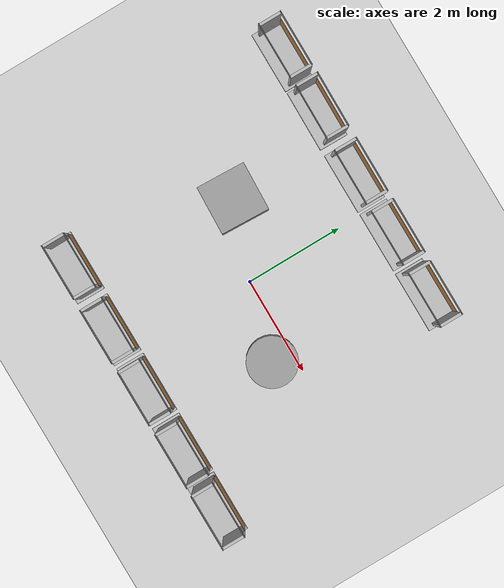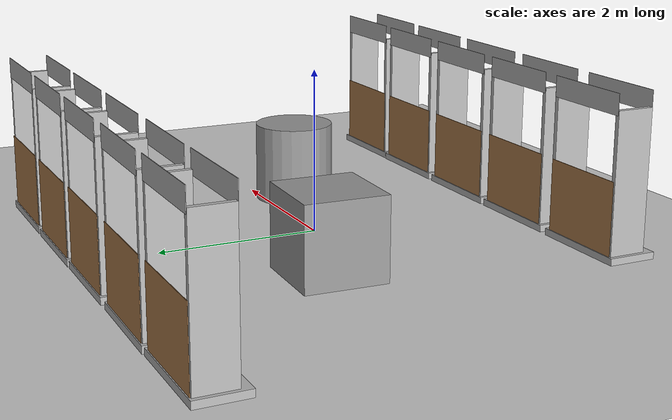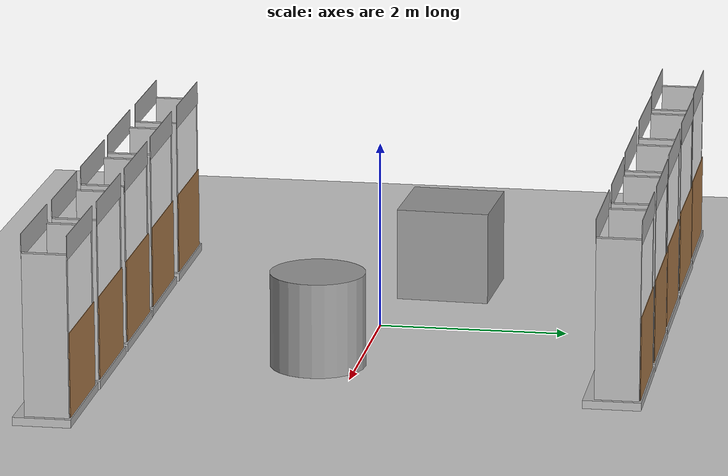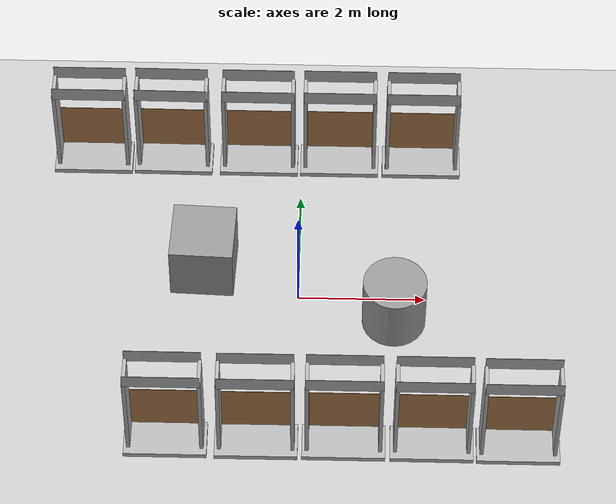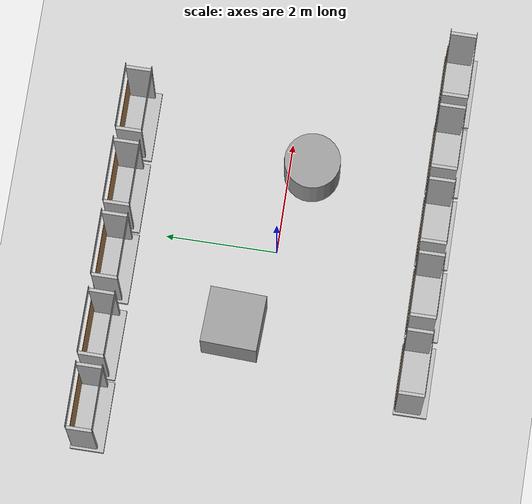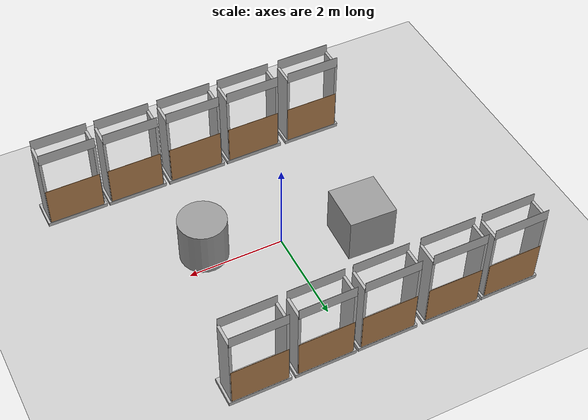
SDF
<sdf version="1.6">
 <world name="default">
  <light name="sun" type="directional">
   <pose>0 0 10 0 -0 0</pose>
   <diffuse>0.8 0.8 0.8 1</diffuse>
   <specular>0.1 0.1 0.1 1</specular>
   <attenuation>
    <range>1000</range>
    <constant>0.9</constant>
    <linear>0.01</linear>
    <quadratic>0.001</quadratic>
   </attenuation>
   <direction>-0.5 0.5 -1</direction>
  </light>
  <model name="ground_plane">
   <static>1</static>
   <link name="link">
    <collision name="collision">
     <geometry><plane><normal>0 0 1</normal><size>100 100</size></plane></geometry>
     <surface><friction><ode><mu>100</mu><mu2>50</mu2></ode></friction></surface>
    </collision>
    <visual name="visual">
     <cast_shadows>0</cast_shadows>
     <geometry><plane><normal>0 0 1</normal><size>100 100</size></plane></geometry>
     <material>
      <script><uri>file://media/materials/scripts/gazebo.material</uri><name>Gazebo/Grey</name></script>
     </material>
    </visual>
   </link>
  </model>
  <gravity>0 0 -9.8</gravity>
  <magnetic_field>6e-06 2.3e-05 -4.2e-05</magnetic_field>
  <atmosphere type="adiabatic"/>
  <physics name="default_physics" default="0" type="ode">
   <max_step_size>0.001</max_step_size>
   <real_time_factor>1</real_time_factor>
   <real_time_update_rate>1000</real_time_update_rate>
  </physics>
  <scene><ambient>0.4 0.4 0.4 1</ambient><background>0.7 0.7 0.7 1</background><shadows>1</shadows></scene>
  <spherical_coordinates>
   <surface_model>EARTH_WGS84</surface_model>
   <latitude_deg>0</latitude_deg>
   <longitude_deg>0</longitude_deg>
   <elevation>0</elevation>
   <heading_deg>0</heading_deg>
  </spherical_coordinates>
  <model name="unit_cylinder_0">
   <pose>1.51347 -0.411785 0.499991 0 0 -0.213293</pose>
   <link name="link">
    <inertial>
     <mass>1</mass>
     <inertia><ixx>0.145833</ixx><ixy>0</ixy><ixz>0</ixz><iyy>0.145833</iyy><iyz>0</iyz><izz>0.125</izz></inertia>
    </inertial>
    <collision name="collision">
     <geometry><cylinder><radius>0.5</radius><length>1</length></cylinder></geometry>
    </collision>
    <visual name="visual">
     <geometry><cylinder><radius>0.5</radius><length>1</length></cylinder></geometry>
     <material>
      <script><name>Gazebo/Grey</name><uri>file://media/materials/scripts/gazebo.material</uri></script>
     </material>
    </visual>
   </link>
  </model>
  <light name="user_spot_light_0" type="spot">
   <pose>-3.28458 5.52578 1 0 -0 0</pose>
   <diffuse>0.5 0.5 0.5 1</diffuse>
   <specular>0.1 0.1 0.1 1</specular>
   <direction>0 0 -1</direction>
   <attenuation>
    <range>20</range>
    <constant>0.5</constant>
    <linear>0.01</linear>
    <quadratic>0.001</quadratic>
   </attenuation>
   <cast_shadows>0</cast_shadows>
   <spot><inner_angle>0.6</inner_angle><outer_angle>1</outer_angle><falloff>1</falloff></spot>
  </light>
  <light name="user_spot_light_1" type="spot">
   <pose>1.94138 -4.66123 1 0 -0 0</pose>
   <diffuse>0.5 0.5 0.5 1</diffuse>
   <specular>0.1 0.1 0.1 1</specular>
   <direction>0 0 -1</direction>
   <attenuation>
    <range>20</range>
    <constant>0.5</constant>
    <linear>0.01</linear>
    <quadratic>0.001</quadratic>
   </attenuation>
   <cast_shadows>0</cast_shadows>
   <spot><inner_angle>0.6</inner_angle><outer_angle>1</outer_angle><falloff>1</falloff></spot>
  </light>
  <model name="unit_box_0_0">
   <pose>-1.51313 0.53504 0.499995 -1e-05 -0 -0.040696</pose>
   <link name="link">
    <inertial>
     <mass>1</mass>
     <inertia>
      <ixx>0.166667</ixx>
      <ixy>0</ixy>
      <ixz>0</ixz>
      <iyy>0.166667</iyy>
      <iyz>0</iyz>
      <izz>0.166667</izz>
     </inertia>
    </inertial>
    <collision name="collision"><geometry><box><size>1 1 1</size></box></geometry></collision>
    <visual name="visual">
     <geometry><box><size>1 1 1</size></box></geometry>
     <material>
      <script><name>Gazebo/Grey</name><uri>file://media/materials/scripts/gazebo.material</uri></script>
     </material>
    </visual>
   </link>
  </model>
  <model name="frc2016_drawbridge">
   <link name="base">
    <inertial>
     <mass>10</mass>
     <pose>0 0 1 0 -0 0</pose>
     <inertia><ixx>3.64907</ixx><ixy>0</ixy><ixz>0</ixz><iyy>4.67075</iyy><iyz>0</iyz><izz>1.66649</izz></inertia>
    </inertial>
    <visual name="platform">
     <pose>0 0 0.0425 0 -0 0</pose>
     <geometry><box><size>1.27 0.5969 0.085</size></box></geometry>
    </visual>
    <collision name="platform">
     <pose>0 0 0.0425 0 -0 0</pose>
     <geometry><box><size>1.27 0.5969 0.085</size></box></geometry>
    </collision>
    <visual name="right_wall">
     <pose>0.55879 0.04444 0.889 0 -0 0</pose>
     <geometry><box><size>0.05715 0.45698 1.77165</size></box></geometry>
    </visual>
    <collision name="right_wall">
     <pose>0.55879 0.04444 0.889 0 -0 0</pose>
     <geometry><box><size>0.05715 0.45698 1.77165</size></box></geometry>
    </collision>
    <visual name="left_wall">
     <pose>-0.55879 0.04444 0.889 0 -0 0</pose>
     <geometry><box><size>0.05715 0.45698 1.77165</size></box></geometry>
    </visual>
    <collision name="left_wall">
     <pose>-0.55879 0.04444 0.889 0 -0 0</pose>
     <geometry><box><size>0.05715 0.45698 1.77165</size></box></geometry>
    </collision>
    <visual name="front_upper_wall">
     <pose>0 0.27611 1.84286 0 -0 0</pose>
     <geometry><box><size>1.1557 0.006347 0.254</size></box></geometry>
    </visual>
    <collision name="front_upper_wall">
     <pose>0 0.27611 1.84286 0 -0 0</pose>
     <geometry><box><size>1.1557 0.006347 0.254</size></box></geometry>
    </collision>
    <visual name="back_upper_wall">
     <pose>0 -0.18722 1.84286 0 -0 0</pose>
     <geometry><box><size>1.1557 0.006347 0.254</size></box></geometry>
    </visual>
    <collision name="back_upper_wall">
     <pose>0 -0.18722 1.84286 0 -0 0</pose>
     <geometry><box><size>1.1557 0.006347 0.254</size></box></geometry>
    </collision>
   </link>
   <link name="bridge">
    <pose>0 0.28245 0.50577 0 -0 0</pose>
    <inertial>
     <mass>2</mass>
     <pose>0 -0.28245 -0.50577 0 -0 0</pose>
     <inertia>
      <ixx>0.139361</ixx>
      <ixy>0</ixy>
      <ixz>0</ixz>
      <iyy>0.357088</iyy>
      <iyz>0</iyz>
      <izz>0.217741</izz>
     </inertia>
    </inertial>
    <visual name="visual">
     <geometry><box><size>1.14298 0.006347 0.9144</size></box></geometry>
     <material><script><name>Gazebo/WoodFloor</name><uri>__default__</uri></script></material>
    </visual>
    <collision name="collision"><geometry><box><size>1.14298 0.006347 0.9144</size></box></geometry></collision>
   </link>
   <joint name="bridge_joint" type="revolute">
    <pose>0 0 -0.4172 0 -0 0</pose>
    <parent>base</parent>
    <child>bridge</child>
    <axis>
     <xyz>1 0 0</xyz>
     <limit><lower>-2</lower><upper>0</upper></limit>
     <use_parent_model_frame>0</use_parent_model_frame>
     <dynamics><spring_reference>0</spring_reference><spring_stiffness>0</spring_stiffness></dynamics>
    </axis>
   </joint>
   <pose>-1.9655 -2.75919 1e-06 -1e-06 -1e-06 7e-06</pose>
  </model>
  <model name="frc2016_drawbridge_clone">
   <link name="base">
    <inertial>
     <mass>10</mass>
     <pose>0 0 1 0 -0 0</pose>
     <inertia><ixx>3.64907</ixx><ixy>0</ixy><ixz>0</ixz><iyy>4.67075</iyy><iyz>0</iyz><izz>1.66649</izz></inertia>
    </inertial>
    <visual name="platform">
     <pose>0 0 0.0425 0 -0 0</pose>
     <geometry><box><size>1.27 0.5969 0.085</size></box></geometry>
    </visual>
    <collision name="platform">
     <pose>0 0 0.0425 0 -0 0</pose>
     <geometry><box><size>1.27 0.5969 0.085</size></box></geometry>
    </collision>
    <visual name="right_wall">
     <pose>0.55879 0.04444 0.889 0 -0 0</pose>
     <geometry><box><size>0.05715 0.45698 1.77165</size></box></geometry>
    </visual>
    <collision name="right_wall">
     <pose>0.55879 0.04444 0.889 0 -0 0</pose>
     <geometry><box><size>0.05715 0.45698 1.77165</size></box></geometry>
    </collision>
    <visual name="left_wall">
     <pose>-0.55879 0.04444 0.889 0 -0 0</pose>
     <geometry><box><size>0.05715 0.45698 1.77165</size></box></geometry>
    </visual>
    <collision name="left_wall">
     <pose>-0.55879 0.04444 0.889 0 -0 0</pose>
     <geometry><box><size>0.05715 0.45698 1.77165</size></box></geometry>
    </collision>
    <visual name="front_upper_wall">
     <pose>0 0.27611 1.84286 0 -0 0</pose>
     <geometry><box><size>1.1557 0.006347 0.254</size></box></geometry>
    </visual>
    <collision name="front_upper_wall">
     <pose>0 0.27611 1.84286 0 -0 0</pose>
     <geometry><box><size>1.1557 0.006347 0.254</size></box></geometry>
    </collision>
    <visual name="back_upper_wall">
     <pose>0 -0.18722 1.84286 0 -0 0</pose>
     <geometry><box><size>1.1557 0.006347 0.254</size></box></geometry>
    </visual>
    <collision name="back_upper_wall">
     <pose>0 -0.18722 1.84286 0 -0 0</pose>
     <geometry><box><size>1.1557 0.006347 0.254</size></box></geometry>
    </collision>
   </link>
   <link name="bridge">
    <pose>0 0.28245 0.50577 0 -0 0</pose>
    <inertial>
     <mass>2</mass>
     <pose>0 -0.28245 -0.50577 0 -0 0</pose>
     <inertia>
      <ixx>0.139361</ixx>
      <ixy>0</ixy>
      <ixz>0</ixz>
      <iyy>0.357088</iyy>
      <iyz>0</iyz>
      <izz>0.217741</izz>
     </inertia>
    </inertial>
    <visual name="visual">
     <geometry><box><size>1.14298 0.006347 0.9144</size></box></geometry>
     <material><script><name>Gazebo/WoodFloor</name><uri>__default__</uri></script></material>
    </visual>
    <collision name="collision"><geometry><box><size>1.14298 0.006347 0.9144</size></box></geometry></collision>
   </link>
   <joint name="bridge_joint" type="revolute">
    <pose>0 0 -0.4172 0 -0 0</pose>
    <parent>base</parent>
    <child>bridge</child>
    <axis>
     <xyz>1 0 0</xyz>
     <limit><lower>-2</lower><upper>0</upper></limit>
     <use_parent_model_frame>0</use_parent_model_frame>
     <dynamics><spring_reference>0</spring_reference><spring_stiffness>0</spring_stiffness></dynamics>
    </axis>
   </joint>
   <pose>1.94894 2.77643 1e-06 1e-06 -1e-06 5e-06</pose>
  </model>
  <model name="frc2016_drawbridge_clone_0">
   <link name="base">
    <inertial>
     <mass>10</mass>
     <pose>0 0 1 0 -0 0</pose>
     <inertia><ixx>3.64907</ixx><ixy>0</ixy><ixz>0</ixz><iyy>4.67075</iyy><iyz>0</iyz><izz>1.66649</izz></inertia>
    </inertial>
    <visual name="platform">
     <pose>0 0 0.0425 0 -0 0</pose>
     <geometry><box><size>1.27 0.5969 0.085</size></box></geometry>
    </visual>
    <collision name="platform">
     <pose>0 0 0.0425 0 -0 0</pose>
     <geometry><box><size>1.27 0.5969 0.085</size></box></geometry>
    </collision>
    <visual name="right_wall">
     <pose>0.55879 0.04444 0.889 0 -0 0</pose>
     <geometry><box><size>0.05715 0.45698 1.77165</size></box></geometry>
    </visual>
    <collision name="right_wall">
     <pose>0.55879 0.04444 0.889 0 -0 0</pose>
     <geometry><box><size>0.05715 0.45698 1.77165</size></box></geometry>
    </collision>
    <visual name="left_wall">
     <pose>-0.55879 0.04444 0.889 0 -0 0</pose>
     <geometry><box><size>0.05715 0.45698 1.77165</size></box></geometry>
    </visual>
    <collision name="left_wall">
     <pose>-0.55879 0.04444 0.889 0 -0 0</pose>
     <geometry><box><size>0.05715 0.45698 1.77165</size></box></geometry>
    </collision>
    <visual name="front_upper_wall">
     <pose>0 0.27611 1.84286 0 -0 0</pose>
     <geometry><box><size>1.1557 0.006347 0.254</size></box></geometry>
    </visual>
    <collision name="front_upper_wall">
     <pose>0 0.27611 1.84286 0 -0 0</pose>
     <geometry><box><size>1.1557 0.006347 0.254</size></box></geometry>
    </collision>
    <visual name="back_upper_wall">
     <pose>0 -0.18722 1.84286 0 -0 0</pose>
     <geometry><box><size>1.1557 0.006347 0.254</size></box></geometry>
    </visual>
    <collision name="back_upper_wall">
     <pose>0 -0.18722 1.84286 0 -0 0</pose>
     <geometry><box><size>1.1557 0.006347 0.254</size></box></geometry>
    </collision>
   </link>
   <link name="bridge">
    <pose>0 0.28245 0.50577 0 -0 0</pose>
    <inertial>
     <mass>2</mass>
     <pose>0 -0.28245 -0.50577 0 -0 0</pose>
     <inertia>
      <ixx>0.139361</ixx>
      <ixy>0</ixy>
      <ixz>0</ixz>
      <iyy>0.357088</iyy>
      <iyz>0</iyz>
      <izz>0.217741</izz>
     </inertia>
    </inertial>
    <visual name="visual">
     <geometry><box><size>1.14298 0.006347 0.9144</size></box></geometry>
     <material><script><name>Gazebo/WoodFloor</name><uri>__default__</uri></script></material>
    </visual>
    <collision name="collision"><geometry><box><size>1.14298 0.006347 0.9144</size></box></geometry></collision>
   </link>
   <joint name="bridge_joint" type="revolute">
    <pose>0 0 -0.4172 0 -0 0</pose>
    <parent>base</parent>
    <child>bridge</child>
    <axis>
     <xyz>1 0 0</xyz>
     <limit><lower>-2</lower><upper>0</upper></limit>
     <use_parent_model_frame>0</use_parent_model_frame>
     <dynamics><spring_reference>0</spring_reference><spring_stiffness>0</spring_stiffness></dynamics>
    </axis>
   </joint>
   <pose>-0.581487 -2.76526 0 0 1e-06 0.002481</pose>
  </model>
  <model name="frc2016_drawbridge_clone_1">
   <link name="base">
    <inertial>
     <mass>10</mass>
     <pose>0 0 1 0 -0 0</pose>
     <inertia><ixx>3.64907</ixx><ixy>0</ixy><ixz>0</ixz><iyy>4.67075</iyy><iyz>0</iyz><izz>1.66649</izz></inertia>
    </inertial>
    <visual name="platform">
     <pose>0 0 0.0425 0 -0 0</pose>
     <geometry><box><size>1.27 0.5969 0.085</size></box></geometry>
    </visual>
    <collision name="platform">
     <pose>0 0 0.0425 0 -0 0</pose>
     <geometry><box><size>1.27 0.5969 0.085</size></box></geometry>
    </collision>
    <visual name="right_wall">
     <pose>0.55879 0.04444 0.889 0 -0 0</pose>
     <geometry><box><size>0.05715 0.45698 1.77165</size></box></geometry>
    </visual>
    <collision name="right_wall">
     <pose>0.55879 0.04444 0.889 0 -0 0</pose>
     <geometry><box><size>0.05715 0.45698 1.77165</size></box></geometry>
    </collision>
    <visual name="left_wall">
     <pose>-0.55879 0.04444 0.889 0 -0 0</pose>
     <geometry><box><size>0.05715 0.45698 1.77165</size></box></geometry>
    </visual>
    <collision name="left_wall">
     <pose>-0.55879 0.04444 0.889 0 -0 0</pose>
     <geometry><box><size>0.05715 0.45698 1.77165</size></box></geometry>
    </collision>
    <visual name="front_upper_wall">
     <pose>0 0.27611 1.84286 0 -0 0</pose>
     <geometry><box><size>1.1557 0.006347 0.254</size></box></geometry>
    </visual>
    <collision name="front_upper_wall">
     <pose>0 0.27611 1.84286 0 -0 0</pose>
     <geometry><box><size>1.1557 0.006347 0.254</size></box></geometry>
    </collision>
    <visual name="back_upper_wall">
     <pose>0 -0.18722 1.84286 0 -0 0</pose>
     <geometry><box><size>1.1557 0.006347 0.254</size></box></geometry>
    </visual>
    <collision name="back_upper_wall">
     <pose>0 -0.18722 1.84286 0 -0 0</pose>
     <geometry><box><size>1.1557 0.006347 0.254</size></box></geometry>
    </collision>
   </link>
   <link name="bridge">
    <pose>0 0.28245 0.50577 0 -0 0</pose>
    <inertial>
     <mass>2</mass>
     <pose>0 -0.28245 -0.50577 0 -0 0</pose>
     <inertia>
      <ixx>0.139361</ixx>
      <ixy>0</ixy>
      <ixz>0</ixz>
      <iyy>0.357088</iyy>
      <iyz>0</iyz>
      <izz>0.217741</izz>
     </inertia>
    </inertial>
    <visual name="visual">
     <geometry><box><size>1.14298 0.006347 0.9144</size></box></geometry>
     <material><script><name>Gazebo/WoodFloor</name><uri>__default__</uri></script></material>
    </visual>
    <collision name="collision"><geometry><box><size>1.14298 0.006347 0.9144</size></box></geometry></collision>
   </link>
   <joint name="bridge_joint" type="revolute">
    <pose>0 0 -0.4172 0 -0 0</pose>
    <parent>base</parent>
    <child>bridge</child>
    <axis>
     <xyz>1 0 0</xyz>
     <limit><lower>-2</lower><upper>0</upper></limit>
     <use_parent_model_frame>0</use_parent_model_frame>
     <dynamics><spring_reference>0</spring_reference><spring_stiffness>0</spring_stiffness></dynamics>
    </axis>
   </joint>
   <pose>0.752193 -2.75919 -1e-06 -4e-06 -0 1.2e-05</pose>
  </model>
  <model name="frc2016_drawbridge_clone_2">
   <link name="base">
    <inertial>
     <mass>10</mass>
     <pose>0 0 1 0 -0 0</pose>
     <inertia><ixx>3.64907</ixx><ixy>0</ixy><ixz>0</ixz><iyy>4.67075</iyy><iyz>0</iyz><izz>1.66649</izz></inertia>
    </inertial>
    <visual name="platform">
     <pose>0 0 0.0425 0 -0 0</pose>
     <geometry><box><size>1.27 0.5969 0.085</size></box></geometry>
    </visual>
    <collision name="platform">
     <pose>0 0 0.0425 0 -0 0</pose>
     <geometry><box><size>1.27 0.5969 0.085</size></box></geometry>
    </collision>
    <visual name="right_wall">
     <pose>0.55879 0.04444 0.889 0 -0 0</pose>
     <geometry><box><size>0.05715 0.45698 1.77165</size></box></geometry>
    </visual>
    <collision name="right_wall">
     <pose>0.55879 0.04444 0.889 0 -0 0</pose>
     <geometry><box><size>0.05715 0.45698 1.77165</size></box></geometry>
    </collision>
    <visual name="left_wall">
     <pose>-0.55879 0.04444 0.889 0 -0 0</pose>
     <geometry><box><size>0.05715 0.45698 1.77165</size></box></geometry>
    </visual>
    <collision name="left_wall">
     <pose>-0.55879 0.04444 0.889 0 -0 0</pose>
     <geometry><box><size>0.05715 0.45698 1.77165</size></box></geometry>
    </collision>
    <visual name="front_upper_wall">
     <pose>0 0.27611 1.84286 0 -0 0</pose>
     <geometry><box><size>1.1557 0.006347 0.254</size></box></geometry>
    </visual>
    <collision name="front_upper_wall">
     <pose>0 0.27611 1.84286 0 -0 0</pose>
     <geometry><box><size>1.1557 0.006347 0.254</size></box></geometry>
    </collision>
    <visual name="back_upper_wall">
     <pose>0 -0.18722 1.84286 0 -0 0</pose>
     <geometry><box><size>1.1557 0.006347 0.254</size></box></geometry>
    </visual>
    <collision name="back_upper_wall">
     <pose>0 -0.18722 1.84286 0 -0 0</pose>
     <geometry><box><size>1.1557 0.006347 0.254</size></box></geometry>
    </collision>
   </link>
   <link name="bridge">
    <pose>0 0.28245 0.50577 0 -0 0</pose>
    <inertial>
     <mass>2</mass>
     <pose>0 -0.28245 -0.50577 0 -0 0</pose>
     <inertia>
      <ixx>0.139361</ixx>
      <ixy>0</ixy>
      <ixz>0</ixz>
      <iyy>0.357088</iyy>
      <iyz>0</iyz>
      <izz>0.217741</izz>
     </inertia>
    </inertial>
    <visual name="visual">
     <geometry><box><size>1.14298 0.006347 0.9144</size></box></geometry>
     <material><script><name>Gazebo/WoodFloor</name><uri>__default__</uri></script></material>
    </visual>
    <collision name="collision"><geometry><box><size>1.14298 0.006347 0.9144</size></box></geometry></collision>
   </link>
   <joint name="bridge_joint" type="revolute">
    <pose>0 0 -0.4172 0 -0 0</pose>
    <parent>base</parent>
    <child>bridge</child>
    <axis>
     <xyz>1 0 0</xyz>
     <limit><lower>-2</lower><upper>0</upper></limit>
     <use_parent_model_frame>0</use_parent_model_frame>
     <dynamics><spring_reference>0</spring_reference><spring_stiffness>0</spring_stiffness></dynamics>
    </axis>
   </joint>
   <pose>2.09597 -2.75918 0 3e-06 -1e-06 1.2e-05</pose>
  </model>
  <model name="frc2016_drawbridge_clone_3">
   <link name="base">
    <inertial>
     <mass>10</mass>
     <pose>0 0 1 0 -0 0</pose>
     <inertia><ixx>3.64907</ixx><ixy>0</ixy><ixz>0</ixz><iyy>4.67075</iyy><iyz>0</iyz><izz>1.66649</izz></inertia>
    </inertial>
    <visual name="platform">
     <pose>0 0 0.0425 0 -0 0</pose>
     <geometry><box><size>1.27 0.5969 0.085</size></box></geometry>
    </visual>
    <collision name="platform">
     <pose>0 0 0.0425 0 -0 0</pose>
     <geometry><box><size>1.27 0.5969 0.085</size></box></geometry>
    </collision>
    <visual name="right_wall">
     <pose>0.55879 0.04444 0.889 0 -0 0</pose>
     <geometry><box><size>0.05715 0.45698 1.77165</size></box></geometry>
    </visual>
    <collision name="right_wall">
     <pose>0.55879 0.04444 0.889 0 -0 0</pose>
     <geometry><box><size>0.05715 0.45698 1.77165</size></box></geometry>
    </collision>
    <visual name="left_wall">
     <pose>-0.55879 0.04444 0.889 0 -0 0</pose>
     <geometry><box><size>0.05715 0.45698 1.77165</size></box></geometry>
    </visual>
    <collision name="left_wall">
     <pose>-0.55879 0.04444 0.889 0 -0 0</pose>
     <geometry><box><size>0.05715 0.45698 1.77165</size></box></geometry>
    </collision>
    <visual name="front_upper_wall">
     <pose>0 0.27611 1.84286 0 -0 0</pose>
     <geometry><box><size>1.1557 0.006347 0.254</size></box></geometry>
    </visual>
    <collision name="front_upper_wall">
     <pose>0 0.27611 1.84286 0 -0 0</pose>
     <geometry><box><size>1.1557 0.006347 0.254</size></box></geometry>
    </collision>
    <visual name="back_upper_wall">
     <pose>0 -0.18722 1.84286 0 -0 0</pose>
     <geometry><box><size>1.1557 0.006347 0.254</size></box></geometry>
    </visual>
    <collision name="back_upper_wall">
     <pose>0 -0.18722 1.84286 0 -0 0</pose>
     <geometry><box><size>1.1557 0.006347 0.254</size></box></geometry>
    </collision>
   </link>
   <link name="bridge">
    <pose>0 0.28245 0.50577 0 -0 0</pose>
    <inertial>
     <mass>2</mass>
     <pose>0 -0.28245 -0.50577 0 -0 0</pose>
     <inertia>
      <ixx>0.139361</ixx>
      <ixy>0</ixy>
      <ixz>0</ixz>
      <iyy>0.357088</iyy>
      <iyz>0</iyz>
      <izz>0.217741</izz>
     </inertia>
    </inertial>
    <visual name="visual">
     <geometry><box><size>1.14298 0.006347 0.9144</size></box></geometry>
     <material><script><name>Gazebo/WoodFloor</name><uri>__default__</uri></script></material>
    </visual>
    <collision name="collision"><geometry><box><size>1.14298 0.006347 0.9144</size></box></geometry></collision>
   </link>
   <joint name="bridge_joint" type="revolute">
    <pose>0 0 -0.4172 0 -0 0</pose>
    <parent>base</parent>
    <child>bridge</child>
    <axis>
     <xyz>1 0 0</xyz>
     <limit><lower>-2</lower><upper>0</upper></limit>
     <use_parent_model_frame>0</use_parent_model_frame>
     <dynamics><spring_reference>0</spring_reference><spring_stiffness>0</spring_stiffness></dynamics>
    </axis>
   </joint>
   <pose>3.41179 -2.77011 0 1e-06 -0 -0.000339</pose>
  </model>
  <model name="frc2016_drawbridge_clone_4">
   <link name="base">
    <inertial>
     <mass>10</mass>
     <pose>0 0 1 0 -0 0</pose>
     <inertia><ixx>3.64907</ixx><ixy>0</ixy><ixz>0</ixz><iyy>4.67075</iyy><iyz>0</iyz><izz>1.66649</izz></inertia>
    </inertial>
    <visual name="platform">
     <pose>0 0 0.0425 0 -0 0</pose>
     <geometry><box><size>1.27 0.5969 0.085</size></box></geometry>
    </visual>
    <collision name="platform">
     <pose>0 0 0.0425 0 -0 0</pose>
     <geometry><box><size>1.27 0.5969 0.085</size></box></geometry>
    </collision>
    <visual name="right_wall">
     <pose>0.55879 0.04444 0.889 0 -0 0</pose>
     <geometry><box><size>0.05715 0.45698 1.77165</size></box></geometry>
    </visual>
    <collision name="right_wall">
     <pose>0.55879 0.04444 0.889 0 -0 0</pose>
     <geometry><box><size>0.05715 0.45698 1.77165</size></box></geometry>
    </collision>
    <visual name="left_wall">
     <pose>-0.55879 0.04444 0.889 0 -0 0</pose>
     <geometry><box><size>0.05715 0.45698 1.77165</size></box></geometry>
    </visual>
    <collision name="left_wall">
     <pose>-0.55879 0.04444 0.889 0 -0 0</pose>
     <geometry><box><size>0.05715 0.45698 1.77165</size></box></geometry>
    </collision>
    <visual name="front_upper_wall">
     <pose>0 0.27611 1.84286 0 -0 0</pose>
     <geometry><box><size>1.1557 0.006347 0.254</size></box></geometry>
    </visual>
    <collision name="front_upper_wall">
     <pose>0 0.27611 1.84286 0 -0 0</pose>
     <geometry><box><size>1.1557 0.006347 0.254</size></box></geometry>
    </collision>
    <visual name="back_upper_wall">
     <pose>0 -0.18722 1.84286 0 -0 0</pose>
     <geometry><box><size>1.1557 0.006347 0.254</size></box></geometry>
    </visual>
    <collision name="back_upper_wall">
     <pose>0 -0.18722 1.84286 0 -0 0</pose>
     <geometry><box><size>1.1557 0.006347 0.254</size></box></geometry>
    </collision>
   </link>
   <link name="bridge">
    <pose>0 0.28245 0.50577 0 -0 0</pose>
    <inertial>
     <mass>2</mass>
     <pose>0 -0.28245 -0.50577 0 -0 0</pose>
     <inertia>
      <ixx>0.139361</ixx>
      <ixy>0</ixy>
      <ixz>0</ixz>
      <iyy>0.357088</iyy>
      <iyz>0</iyz>
      <izz>0.217741</izz>
     </inertia>
    </inertial>
    <visual name="visual">
     <geometry><box><size>1.14298 0.006347 0.9144</size></box></geometry>
     <material><script><name>Gazebo/WoodFloor</name><uri>__default__</uri></script></material>
    </visual>
    <collision name="collision"><geometry><box><size>1.14298 0.006347 0.9144</size></box></geometry></collision>
   </link>
   <joint name="bridge_joint" type="revolute">
    <pose>0 0 -0.4172 0 -0 0</pose>
    <parent>base</parent>
    <child>bridge</child>
    <axis>
     <xyz>1 0 0</xyz>
     <limit><lower>-2</lower><upper>0</upper></limit>
     <use_parent_model_frame>0</use_parent_model_frame>
     <dynamics><spring_reference>0</spring_reference><spring_stiffness>0</spring_stiffness></dynamics>
    </axis>
   </joint>
   <pose>0.611826 2.77643 -1e-06 0 2e-06 7e-06</pose>
  </model>
  <model name="frc2016_drawbridge_clone_5">
   <link name="base">
    <inertial>
     <mass>10</mass>
     <pose>0 0 1 0 -0 0</pose>
     <inertia><ixx>3.64907</ixx><ixy>0</ixy><ixz>0</ixz><iyy>4.67075</iyy><iyz>0</iyz><izz>1.66649</izz></inertia>
    </inertial>
    <visual name="platform">
     <pose>0 0 0.0425 0 -0 0</pose>
     <geometry><box><size>1.27 0.5969 0.085</size></box></geometry>
    </visual>
    <collision name="platform">
     <pose>0 0 0.0425 0 -0 0</pose>
     <geometry><box><size>1.27 0.5969 0.085</size></box></geometry>
    </collision>
    <visual name="right_wall">
     <pose>0.55879 0.04444 0.889 0 -0 0</pose>
     <geometry><box><size>0.05715 0.45698 1.77165</size></box></geometry>
    </visual>
    <collision name="right_wall">
     <pose>0.55879 0.04444 0.889 0 -0 0</pose>
     <geometry><box><size>0.05715 0.45698 1.77165</size></box></geometry>
    </collision>
    <visual name="left_wall">
     <pose>-0.55879 0.04444 0.889 0 -0 0</pose>
     <geometry><box><size>0.05715 0.45698 1.77165</size></box></geometry>
    </visual>
    <collision name="left_wall">
     <pose>-0.55879 0.04444 0.889 0 -0 0</pose>
     <geometry><box><size>0.05715 0.45698 1.77165</size></box></geometry>
    </collision>
    <visual name="front_upper_wall">
     <pose>0 0.27611 1.84286 0 -0 0</pose>
     <geometry><box><size>1.1557 0.006347 0.254</size></box></geometry>
    </visual>
    <collision name="front_upper_wall">
     <pose>0 0.27611 1.84286 0 -0 0</pose>
     <geometry><box><size>1.1557 0.006347 0.254</size></box></geometry>
    </collision>
    <visual name="back_upper_wall">
     <pose>0 -0.18722 1.84286 0 -0 0</pose>
     <geometry><box><size>1.1557 0.006347 0.254</size></box></geometry>
    </visual>
    <collision name="back_upper_wall">
     <pose>0 -0.18722 1.84286 0 -0 0</pose>
     <geometry><box><size>1.1557 0.006347 0.254</size></box></geometry>
    </collision>
   </link>
   <link name="bridge">
    <pose>0 0.28245 0.50577 0 -0 0</pose>
    <inertial>
     <mass>2</mass>
     <pose>0 -0.28245 -0.50577 0 -0 0</pose>
     <inertia>
      <ixx>0.139361</ixx>
      <ixy>0</ixy>
      <ixz>0</ixz>
      <iyy>0.357088</iyy>
      <iyz>0</iyz>
      <izz>0.217741</izz>
     </inertia>
    </inertial>
    <visual name="visual">
     <geometry><box><size>1.14298 0.006347 0.9144</size></box></geometry>
     <material><script><name>Gazebo/WoodFloor</name><uri>__default__</uri></script></material>
    </visual>
    <collision name="collision"><geometry><box><size>1.14298 0.006347 0.9144</size></box></geometry></collision>
   </link>
   <joint name="bridge_joint" type="revolute">
    <pose>0 0 -0.4172 0 -0 0</pose>
    <parent>base</parent>
    <child>bridge</child>
    <axis>
     <xyz>1 0 0</xyz>
     <limit><lower>-2</lower><upper>0</upper></limit>
     <use_parent_model_frame>0</use_parent_model_frame>
     <dynamics><spring_reference>0</spring_reference><spring_stiffness>0</spring_stiffness></dynamics>
    </axis>
   </joint>
   <pose>-0.703761 2.7702 1e-06 0 -1e-06 -0.002696</pose>
  </model>
  <model name="frc2016_drawbridge_clone_5_clone">
   <link name="base">
    <inertial>
     <mass>10</mass>
     <pose>0 0 1 0 -0 0</pose>
     <inertia><ixx>3.64907</ixx><ixy>0</ixy><ixz>0</ixz><iyy>4.67075</iyy><iyz>0</iyz><izz>1.66649</izz></inertia>
    </inertial>
    <visual name="platform">
     <pose>0 0 0.0425 0 -0 0</pose>
     <geometry><box><size>1.27 0.5969 0.085</size></box></geometry>
    </visual>
    <collision name="platform">
     <pose>0 0 0.0425 0 -0 0</pose>
     <geometry><box><size>1.27 0.5969 0.085</size></box></geometry>
    </collision>
    <visual name="right_wall">
     <pose>0.55879 0.04444 0.889 0 -0 0</pose>
     <geometry><box><size>0.05715 0.45698 1.77165</size></box></geometry>
    </visual>
    <collision name="right_wall">
     <pose>0.55879 0.04444 0.889 0 -0 0</pose>
     <geometry><box><size>0.05715 0.45698 1.77165</size></box></geometry>
    </collision>
    <visual name="left_wall">
     <pose>-0.55879 0.04444 0.889 0 -0 0</pose>
     <geometry><box><size>0.05715 0.45698 1.77165</size></box></geometry>
    </visual>
    <collision name="left_wall">
     <pose>-0.55879 0.04444 0.889 0 -0 0</pose>
     <geometry><box><size>0.05715 0.45698 1.77165</size></box></geometry>
    </collision>
    <visual name="front_upper_wall">
     <pose>0 0.27611 1.84286 0 -0 0</pose>
     <geometry><box><size>1.1557 0.006347 0.254</size></box></geometry>
    </visual>
    <collision name="front_upper_wall">
     <pose>0 0.27611 1.84286 0 -0 0</pose>
     <geometry><box><size>1.1557 0.006347 0.254</size></box></geometry>
    </collision>
    <visual name="back_upper_wall">
     <pose>0 -0.18722 1.84286 0 -0 0</pose>
     <geometry><box><size>1.1557 0.006347 0.254</size></box></geometry>
    </visual>
    <collision name="back_upper_wall">
     <pose>0 -0.18722 1.84286 0 -0 0</pose>
     <geometry><box><size>1.1557 0.006347 0.254</size></box></geometry>
    </collision>
   </link>
   <link name="bridge">
    <pose>0 0.28245 0.50577 0 -0 0</pose>
    <inertial>
     <mass>2</mass>
     <pose>0 -0.28245 -0.50577 0 -0 0</pose>
     <inertia>
      <ixx>0.139361</ixx>
      <ixy>0</ixy>
      <ixz>0</ixz>
      <iyy>0.357088</iyy>
      <iyz>0</iyz>
      <izz>0.217741</izz>
     </inertia>
    </inertial>
    <visual name="visual">
     <geometry><box><size>1.14298 0.006347 0.9144</size></box></geometry>
     <material><script><name>Gazebo/WoodFloor</name><uri>__default__</uri></script></material>
    </visual>
    <collision name="collision"><geometry><box><size>1.14298 0.006347 0.9144</size></box></geometry></collision>
   </link>
   <joint name="bridge_joint" type="revolute">
    <pose>0 0 -0.4172 0 -0 0</pose>
    <parent>base</parent>
    <child>bridge</child>
    <axis>
     <xyz>1 0 0</xyz>
     <limit><lower>-2</lower><upper>0</upper></limit>
     <use_parent_model_frame>0</use_parent_model_frame>
     <dynamics><spring_reference>0</spring_reference><spring_stiffness>0</spring_stiffness></dynamics>
    </axis>
   </joint>
   <pose>-2.10192 2.77052 2e-06 -3e-06 -0 -0.009335</pose>
  </model>
  <model name="frc2016_drawbridge_clone_5_clone_clone">
   <link name="base">
    <inertial>
     <mass>10</mass>
     <pose>0 0 1 0 -0 0</pose>
     <inertia><ixx>3.64907</ixx><ixy>0</ixy><ixz>0</ixz><iyy>4.67075</iyy><iyz>0</iyz><izz>1.66649</izz></inertia>
    </inertial>
    <visual name="platform">
     <pose>0 0 0.0425 0 -0 0</pose>
     <geometry><box><size>1.27 0.5969 0.085</size></box></geometry>
    </visual>
    <collision name="platform">
     <pose>0 0 0.0425 0 -0 0</pose>
     <geometry><box><size>1.27 0.5969 0.085</size></box></geometry>
    </collision>
    <visual name="right_wall">
     <pose>0.55879 0.04444 0.889 0 -0 0</pose>
     <geometry><box><size>0.05715 0.45698 1.77165</size></box></geometry>
    </visual>
    <collision name="right_wall">
     <pose>0.55879 0.04444 0.889 0 -0 0</pose>
     <geometry><box><size>0.05715 0.45698 1.77165</size></box></geometry>
    </collision>
    <visual name="left_wall">
     <pose>-0.55879 0.04444 0.889 0 -0 0</pose>
     <geometry><box><size>0.05715 0.45698 1.77165</size></box></geometry>
    </visual>
    <collision name="left_wall">
     <pose>-0.55879 0.04444 0.889 0 -0 0</pose>
     <geometry><box><size>0.05715 0.45698 1.77165</size></box></geometry>
    </collision>
    <visual name="front_upper_wall">
     <pose>0 0.27611 1.84286 0 -0 0</pose>
     <geometry><box><size>1.1557 0.006347 0.254</size></box></geometry>
    </visual>
    <collision name="front_upper_wall">
     <pose>0 0.27611 1.84286 0 -0 0</pose>
     <geometry><box><size>1.1557 0.006347 0.254</size></box></geometry>
    </collision>
    <visual name="back_upper_wall">
     <pose>0 -0.18722 1.84286 0 -0 0</pose>
     <geometry><box><size>1.1557 0.006347 0.254</size></box></geometry>
    </visual>
    <collision name="back_upper_wall">
     <pose>0 -0.18722 1.84286 0 -0 0</pose>
     <geometry><box><size>1.1557 0.006347 0.254</size></box></geometry>
    </collision>
   </link>
   <link name="bridge">
    <pose>0 0.28245 0.50577 0 -0 0</pose>
    <inertial>
     <mass>2</mass>
     <pose>0 -0.28245 -0.50577 0 -0 0</pose>
     <inertia>
      <ixx>0.139361</ixx>
      <ixy>0</ixy>
      <ixz>0</ixz>
      <iyy>0.357088</iyy>
      <iyz>0</iyz>
      <izz>0.217741</izz>
     </inertia>
    </inertial>
    <visual name="visual">
     <geometry><box><size>1.14298 0.006347 0.9144</size></box></geometry>
     <material><script><name>Gazebo/WoodFloor</name><uri>__default__</uri></script></material>
    </visual>
    <collision name="collision"><geometry><box><size>1.14298 0.006347 0.9144</size></box></geometry></collision>
   </link>
   <joint name="bridge_joint" type="revolute">
    <pose>0 0 -0.4172 0 -0 0</pose>
    <parent>base</parent>
    <child>bridge</child>
    <axis>
     <xyz>1 0 0</xyz>
     <limit><lower>-2</lower><upper>0</upper></limit>
     <use_parent_model_frame>0</use_parent_model_frame>
     <dynamics><spring_reference>0</spring_reference><spring_stiffness>0</spring_stiffness></dynamics>
    </axis>
   </joint>
   <pose>-3.41444 2.76621 -3e-06 -2e-06 4e-06 -0.001296</pose>
  </model>
 </world>
</sdf>
